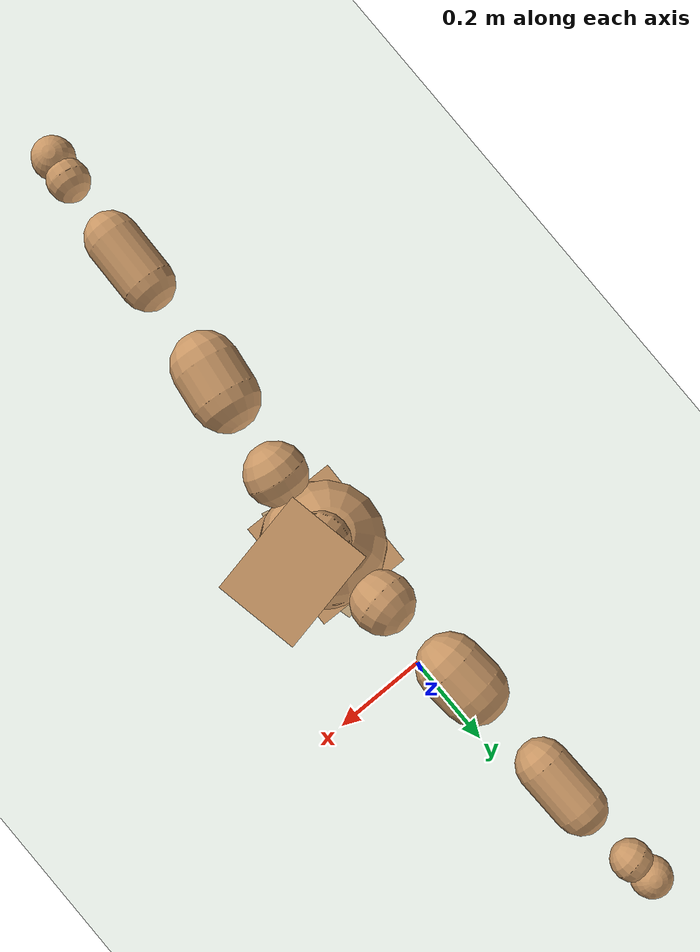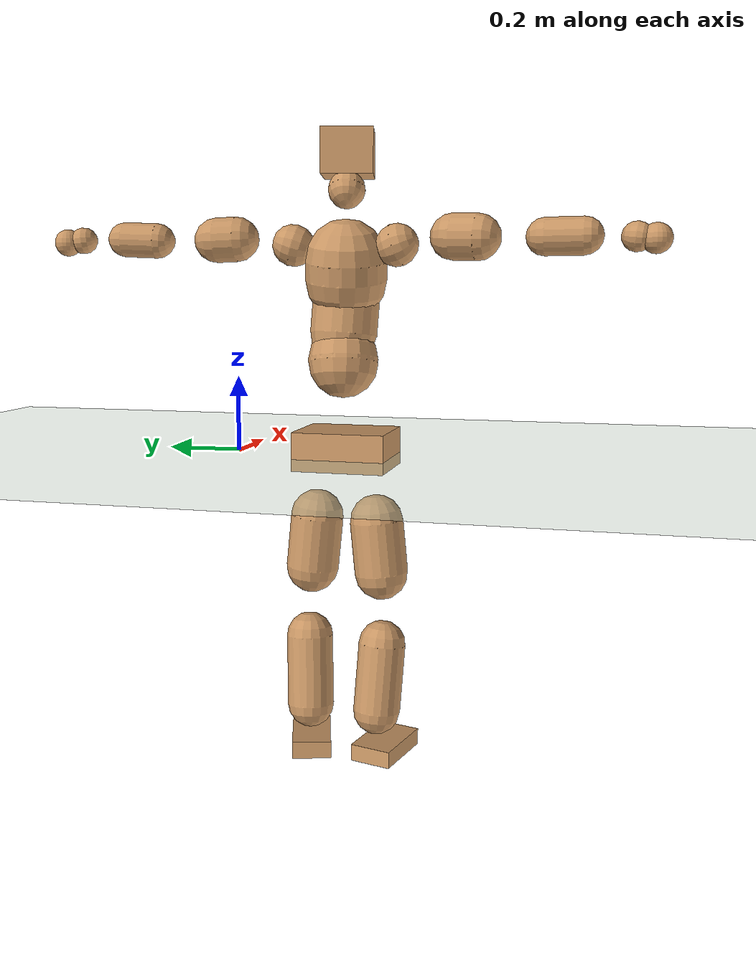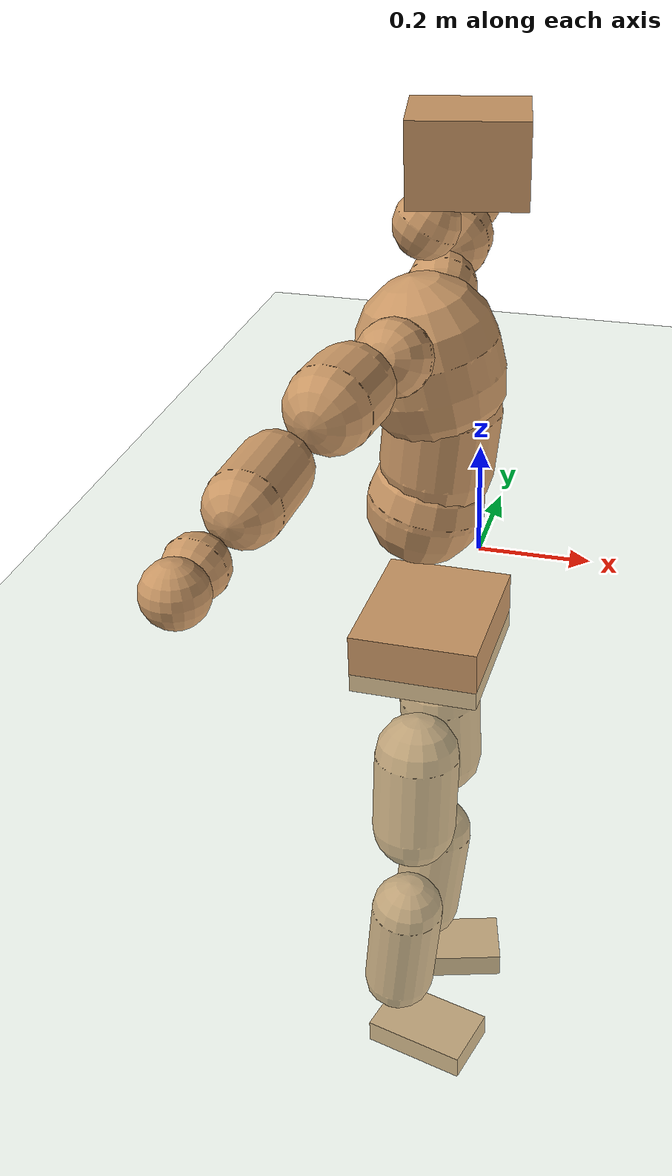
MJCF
<mujoco model="humanoid">
  <compiler coordinate="local" angle="radian"/>
  <default>
    <joint damping="0.0" armature="0.01" stiffness="0.0" limited="true"/>
    <geom conaffinity="1" condim="3" contype="7" margin="0.001" rgba="0.8 0.6 .4 1"/>
  </default>
  <asset>
    <texture type="skybox" builtin="gradient" rgb1=".4 .5 .6" rgb2="0 0 0" width="100" height="100"/>
    <texture builtin="flat" height="1278" mark="cross" markrgb="1 1 1" name="texgeom" random="0.01" rgb1="0.8 0.6 0.4" rgb2="0.8 0.6 0.4" type="cube" width="127"/>
    <texture builtin="checker" height="100" name="texplane" rgb1="0 0 0" rgb2="0.8 0.8 0.8" type="2d" width="100"/>
    <material name="MatPlane" reflectance="0.5" shininess="1" specular="1" texrepeat="60 60" texture="texplane"/>
    <material name="geom" texture="texgeom" texuniform="true"/>
  </asset>
  <worldbody>
    <light cutoff="100" diffuse="1 1 1" dir="-0 0 -1.3" directional="true" exponent="1" pos="0 0 1.3" specular=".1 .1 .1"/>
    <geom conaffinity="1" condim="3" name="floor" pos="0 0 0" rgba="0.8 0.9 0.8 1" size="100 100 .2" type="plane" material="MatPlane"/>
    <body name="Pelvis" pos="0.0004 -0.3045 0.0255">
      <freejoint name="Pelvis"/>
      <geom type="box" contype="1" conaffinity="1" density="5359.375052" pos="-0.0130 0.0002 -0.0086" size="0.1026 0.1219 0.0506" quat="1.0000 0.0000 0.0000 -0.0085" name="Pelvis"/>
      <body name="L_Hip" pos="-0.0201 0.0702 -0.0921">
        <joint name="L_Hip_x" type="hinge" pos="0 0 0" axis="1 0 0" stiffness="1600" damping="160" armature="0.02" range="-180.0000 180.0000"/>
        <joint name="L_Hip_y" type="hinge" pos="0 0 0" axis="0 1 0" stiffness="1600" damping="160" armature="0.02" range="-180.0000 180.0000"/>
        <joint name="L_Hip_z" type="hinge" pos="0 0 0" axis="0 0 1" stiffness="1600" damping="160" armature="0.02" range="-180.0000 180.0000"/>
        <geom type="capsule" contype="1" conaffinity="1" density="2040.816327" size="0.0701" fromto="0.0009 0.0098 -0.0996 0.0022 0.0236 -0.2400" name="L_Hip"/>
        <body name="L_Knee" pos="0.0031 0.0333 -0.3397">
          <joint name="L_Knee_x" type="hinge" pos="0 0 0" axis="1 0 0" stiffness="1600" damping="160" armature="0.02" range="-180.0000 180.0000"/>
          <joint name="L_Knee_y" type="hinge" pos="0 0 0" axis="0 1 0" stiffness="1600" damping="160" armature="0.02" range="-180.0000 180.0000"/>
          <joint name="L_Knee_z" type="hinge" pos="0 0 0" axis="0 0 1" stiffness="1600" damping="160" armature="0.02" range="-180.0000 180.0000"/>
          <geom type="capsule" contype="1" conaffinity="1" density="1234.567901" size="0.0622" fromto="-0.0108 -0.0041 -0.0915 -0.0326 -0.0125 -0.2770" name="L_Knee"/>
          <body name="L_Ankle" pos="-0.0434 -0.0166 -0.3685">
            <joint name="L_Ankle_x" type="hinge" pos="0 0 0" axis="1 0 0" stiffness="1600" damping="160" armature="0.02" range="-180.0000 180.0000"/>
            <joint name="L_Ankle_y" type="hinge" pos="0 0 0" axis="0 1 0" stiffness="1600" damping="160" armature="0.02" range="-180.0000 180.0000"/>
            <joint name="L_Ankle_z" type="hinge" pos="0 0 0" axis="0 0 1" stiffness="1600" damping="160" armature="0.02" range="-180.0000 180.0000"/>
            <geom type="box" contype="1" conaffinity="1" density="1000.000033" pos="0.0614 0.0171 -0.0284" size="0.0904 0.0524 0.0231" quat="0.9908 0.0000 0.0000 0.1355" name="L_Ankle"/>
            <body name="L_Toe" pos="0.1227 0.0342 -0.0568">
              <joint name="L_Toe_x" type="hinge" pos="0 0 0" axis="1 0 0" stiffness="1000" damping="100" armature="0.02" range="-180.0000 180.0000"/>
              <joint name="L_Toe_y" type="hinge" pos="0 0 0" axis="0 1 0" stiffness="1000" damping="100" armature="0.02" range="-180.0000 180.0000"/>
              <joint name="L_Toe_z" type="hinge" pos="0 0 0" axis="0 0 1" stiffness="1000" damping="100" armature="0.02" range="-180.0000 180.0000"/>
              <geom type="box" contype="1" conaffinity="1" density="8178111.970543" pos="0.0000 0.0000 0.0281" size="0.0011 0.0026 0.0011" quat="0.9900 0.0000 0.0000 0.1408" name="L_Toe"/>
            </body>
          </body>
        </body>
      </body>
      <body name="R_Hip" pos="-0.0161 -0.0723 -0.0991">
        <joint name="R_Hip_x" type="hinge" pos="0 0 0" axis="1 0 0" stiffness="1600" damping="160" armature="0.02" range="-180.0000 180.0000"/>
        <joint name="R_Hip_y" type="hinge" pos="0 0 0" axis="0 1 0" stiffness="1600" damping="160" armature="0.02" range="-180.0000 180.0000"/>
        <joint name="R_Hip_z" type="hinge" pos="0 0 0" axis="0 0 1" stiffness="1600" damping="160" armature="0.02" range="-180.0000 180.0000"/>
        <geom type="capsule" contype="1" conaffinity="1" density="2040.816327" size="0.0703" fromto="-0.0021 -0.0102 -0.0997 -0.0050 -0.0246 -0.2397" name="R_Hip"/>
        <body name="R_Knee" pos="-0.0071 -0.0349 -0.3394">
          <joint name="R_Knee_x" type="hinge" pos="0 0 0" axis="1 0 0" stiffness="1600" damping="160" armature="0.02" range="-180.0000 180.0000"/>
          <joint name="R_Knee_y" type="hinge" pos="0 0 0" axis="0 1 0" stiffness="1600" damping="160" armature="0.02" range="-180.0000 180.0000"/>
          <joint name="R_Knee_z" type="hinge" pos="0 0 0" axis="0 0 1" stiffness="1600" damping="160" armature="0.02" range="-180.0000 180.0000"/>
          <geom type="capsule" contype="1" conaffinity="1" density="1234.567901" size="0.0623" fromto="-0.0105 0.0048 -0.0916 -0.0310 0.0143 -0.2709" name="R_Knee"/>
          <body name="R_Ankle" pos="-0.0415 0.0192 -0.3625">
            <joint name="R_Ankle_x" type="hinge" pos="0 0 0" axis="1 0 0" stiffness="1600" damping="160" armature="0.02" range="-180.0000 180.0000"/>
            <joint name="R_Ankle_y" type="hinge" pos="0 0 0" axis="0 1 0" stiffness="1600" damping="160" armature="0.02" range="-180.0000 180.0000"/>
            <joint name="R_Ankle_z" type="hinge" pos="0 0 0" axis="0 0 1" stiffness="1600" damping="160" armature="0.02" range="-180.0000 180.0000"/>
            <geom type="box" contype="1" conaffinity="1" density="1000.000032" pos="0.0664 -0.0170 -0.0274" size="0.0915 0.0562 0.0223" quat="0.9922 0.0000 0.0000 -0.1249" name="R_Ankle"/>
            <body name="R_Toe" pos="0.1327 -0.034 -0.0549">
              <joint name="R_Toe_x" type="hinge" pos="0 0 0" axis="1 0 0" stiffness="1000" damping="100" armature="0.02" range="-180.0000 180.0000"/>
              <joint name="R_Toe_y" type="hinge" pos="0 0 0" axis="0 1 0" stiffness="1000" damping="100" armature="0.02" range="-180.0000 180.0000"/>
              <joint name="R_Toe_z" type="hinge" pos="0 0 0" axis="0 0 1" stiffness="1000" damping="100" armature="0.02" range="-180.0000 180.0000"/>
              <geom type="box" contype="1" conaffinity="1" density="7323656.210841" pos="0.0000 0.0000 0.0306" size="0.0011 0.0028 0.0013" quat="0.9932 0.0000 0.0000 -0.1162" name="R_Toe"/>
            </body>
          </body>
        </body>
      </body>
      <body name="Torso" pos="-0.0415 0.0034 0.1396">
        <joint name="Torso_x" type="hinge" pos="0 0 0" axis="1 0 0" stiffness="2000" damping="200" armature="0.02" range="-180.0000 180.0000"/>
        <joint name="Torso_y" type="hinge" pos="0 0 0" axis="0 1 0" stiffness="2000" damping="200" armature="0.02" range="-180.0000 180.0000"/>
        <joint name="Torso_z" type="hinge" pos="0 0 0" axis="0 0 1" stiffness="2000" damping="200" armature="0.02" range="-180.0000 180.0000"/>
        <geom type="capsule" contype="1" conaffinity="1" density="2040.816327" size="0.0912" fromto="0.0196 0.0034 0.0890 0.0173 0.0030 0.0785" name="Torso"/>
        <body name="Spine" pos="0.0369 0.0064 0.1675">
          <joint name="Spine_x" type="hinge" pos="0 0 0" axis="1 0 0" stiffness="2000" damping="200" armature="0.02" range="-180.0000 180.0000"/>
          <joint name="Spine_y" type="hinge" pos="0 0 0" axis="0 1 0" stiffness="2000" damping="200" armature="0.02" range="-180.0000 180.0000"/>
          <joint name="Spine_z" type="hinge" pos="0 0 0" axis="0 0 1" stiffness="2000" damping="200" armature="0.02" range="-180.0000 180.0000"/>
          <geom type="capsule" contype="1" conaffinity="1" density="2040.816327" size="0.0871" fromto="0.0107 -0.0042 0.0863 -0.0020 0.0008 -0.0165" name="Spine"/>
          <body name="Chest" pos="0.0086 -0.0034 0.0698">
            <joint name="Chest_x" type="hinge" pos="0 0 0" axis="1 0 0" stiffness="2000" damping="200" armature="0.02" range="-180.0000 180.0000"/>
            <joint name="Chest_y" type="hinge" pos="0 0 0" axis="0 1 0" stiffness="2000" damping="200" armature="0.02" range="-180.0000 180.0000"/>
            <joint name="Chest_z" type="hinge" pos="0 0 0" axis="0 0 1" stiffness="2000" damping="200" armature="0.02" range="-180.0000 180.0000"/>
            <geom type="capsule" contype="1" conaffinity="1" density="2040.816327" size="0.1063" fromto="-0.0222 -0.0053 0.1039 -0.0118 -0.0028 0.0554" name="Chest"/>
            <body name="Neck" pos="-0.049 -0.0116 0.2342">
              <joint name="Neck_x" type="hinge" pos="0 0 0" axis="1 0 0" stiffness="1000" damping="100" armature="0.02" range="-180.0000 180.0000"/>
              <joint name="Neck_y" type="hinge" pos="0 0 0" axis="0 1 0" stiffness="1000" damping="100" armature="0.02" range="-180.0000 180.0000"/>
              <joint name="Neck_z" type="hinge" pos="0 0 0" axis="0 0 1" stiffness="1000" damping="100" armature="0.02" range="-180.0000 180.0000"/>
              <geom type="capsule" contype="1" conaffinity="1" density="1000" size="0.0476" fromto="0.0267 0.0044 0.0469 0.0277 0.0046 0.0486" name="Neck"/>
              <body name="Head" pos="0.0543 0.009 0.0955">
                <joint name="Head_x" type="hinge" pos="0 0 0" axis="1 0 0" stiffness="1000" damping="100" armature="0.02" range="-180.0000 180.0000"/>
                <joint name="Head_y" type="hinge" pos="0 0 0" axis="0 1 0" stiffness="1000" damping="100" armature="0.02" range="-180.0000 180.0000"/>
                <joint name="Head_z" type="hinge" pos="0 0 0" axis="0 0 1" stiffness="1000" damping="100" armature="0.02" range="-180.0000 180.0000"/>
                <geom type="box" contype="1" conaffinity="1" density="2249.999892" pos="0.0282 0.0055 0.0487" size="0.0819 0.0669 0.0577" quat="0.9954 0.0000 0.0000 0.0963" name="Head"/>
              </body>
            </body>
            <body name="L_Thorax" pos="-0.0236 0.07 0.1226">
              <joint name="L_Thorax_x" type="hinge" pos="0 0 0" axis="1 0 0" stiffness="1000" damping="100" armature="0.02" range="-180.0000 180.0000"/>
              <joint name="L_Thorax_y" type="hinge" pos="0 0 0" axis="0 1 0" stiffness="1000" damping="100" armature="0.02" range="-180.0000 180.0000"/>
              <joint name="L_Thorax_z" type="hinge" pos="0 0 0" axis="0 0 1" stiffness="1000" damping="100" armature="0.02" range="-180.0000 180.0000"/>
              <geom type="capsule" contype="1" conaffinity="1" density="1000" size="0.0541" fromto="-0.0100 0.0604 0.0201 -0.0103 0.0623 0.0207" name="L_Thorax"/>
              <body name="L_Shoulder" pos="-0.0204 0.1227 0.0407">
                <joint name="L_Shoulder_x" type="hinge" pos="0 0 0" axis="1 0 0" stiffness="1000" damping="100" armature="0.02" range="-720.0000 720.0000"/>
                <joint name="L_Shoulder_y" type="hinge" pos="0 0 0" axis="0 1 0" stiffness="1000" damping="100" armature="0.02" range="-720.0000 720.0000"/>
                <joint name="L_Shoulder_z" type="hinge" pos="0 0 0" axis="0 0 1" stiffness="1000" damping="100" armature="0.02" range="-720.0000 720.0000"/>
                <geom type="capsule" contype="1" conaffinity="1" density="1000" size="0.0576" fromto="-0.0069 0.0872 -0.0036 -0.0112 0.1415 -0.0059" name="L_Shoulder"/>
                <body name="L_Elbow" pos="-0.0181 0.2287 -0.0095">
                  <joint name="L_Elbow_x" type="hinge" pos="0 0 0" axis="1 0 0" stiffness="1000" damping="100" armature="0.02" range="-720.0000 720.0000"/>
                  <joint name="L_Elbow_y" type="hinge" pos="0 0 0" axis="0 1 0" stiffness="1000" damping="100" armature="0.02" range="-720.0000 720.0000"/>
                  <joint name="L_Elbow_z" type="hinge" pos="0 0 0" axis="0 0 1" stiffness="1000" damping="100" armature="0.02" range="-720.0000 720.0000"/>
                  <geom type="capsule" contype="1" conaffinity="1" density="1000" size="0.0451" fromto="-0.0019 0.0750 0.0034 -0.0042 0.1655 0.0074" name="L_Elbow"/>
                  <body name="L_Wrist" pos="-0.0061 0.2405 0.0108">
                    <joint name="L_Wrist_x" type="hinge" pos="0 0 0" axis="1 0 0" stiffness="600" damping="60" armature="0.02" range="-180.0000 180.0000"/>
                    <joint name="L_Wrist_y" type="hinge" pos="0 0 0" axis="0 1 0" stiffness="600" damping="60" armature="0.02" range="-180.0000 180.0000"/>
                    <joint name="L_Wrist_z" type="hinge" pos="0 0 0" axis="0 0 1" stiffness="600" damping="60" armature="0.02" range="-180.0000 180.0000"/>
                    <geom type="capsule" contype="1" conaffinity="1" density="1000" size="0.0346" fromto="-0.0072 0.0415 -0.0053 -0.0076 0.0434 -0.0055" name="L_Wrist"/>
                    <body name="L_Hand" pos="-0.0148 0.0849 -0.0108">
                      <joint name="L_Hand_x" type="hinge" pos="0 0 0" axis="1 0 0" stiffness="600" damping="60" armature="0.02" range="-180.0000 180.0000"/>
                      <joint name="L_Hand_y" type="hinge" pos="0 0 0" axis="0 1 0" stiffness="600" damping="60" armature="0.02" range="-180.0000 180.0000"/>
                      <joint name="L_Hand_z" type="hinge" pos="0 0 0" axis="0 0 1" stiffness="600" damping="60" armature="0.02" range="-180.0000 180.0000"/>
                      <geom type="sphere" contype="1" conaffinity="1" density="1000" size="0.0353" pos="0.0000 0.0000 0.0000" name="L_Hand"/>
                    </body>
                  </body>
                </body>
              </body>
            </body>
            <body name="R_Thorax" pos="-0.0296 -0.0827 0.1208">
              <joint name="R_Thorax_x" type="hinge" pos="0 0 0" axis="1 0 0" stiffness="1000" damping="100" armature="0.02" range="-180.0000 180.0000"/>
              <joint name="R_Thorax_y" type="hinge" pos="0 0 0" axis="0 1 0" stiffness="1000" damping="100" armature="0.02" range="-180.0000 180.0000"/>
              <joint name="R_Thorax_z" type="hinge" pos="0 0 0" axis="0 0 1" stiffness="1000" damping="100" armature="0.02" range="-180.0000 180.0000"/>
              <geom type="capsule" contype="1" conaffinity="1" density="1000" size="0.0545" fromto="-0.0046 -0.0574 0.0205 -0.0048 -0.0593 0.0212" name="R_Thorax"/>
              <body name="R_Shoulder" pos="-0.0094 -0.1167 0.0417">
                <joint name="R_Shoulder_x" type="hinge" pos="0 0 0" axis="1 0 0" stiffness="1000" damping="100" armature="0.02" range="-720.0000 720.0000"/>
                <joint name="R_Shoulder_y" type="hinge" pos="0 0 0" axis="0 1 0" stiffness="1000" damping="100" armature="0.02" range="-720.0000 720.0000"/>
                <joint name="R_Shoulder_z" type="hinge" pos="0 0 0" axis="0 0 1" stiffness="1000" damping="100" armature="0.02" range="-720.0000 720.0000"/>
                <geom type="capsule" contype="1" conaffinity="1" density="1000" size="0.0586" fromto="-0.0120 -0.0878 -0.0025 -0.0203 -0.1489 -0.0043" name="R_Shoulder"/>
                <body name="R_Elbow" pos="-0.0323 -0.2366 -0.0068">
                  <joint name="R_Elbow_x" type="hinge" pos="0 0 0" axis="1 0 0" stiffness="1000" damping="100" armature="0.02" range="-720.0000 720.0000"/>
                  <joint name="R_Elbow_y" type="hinge" pos="0 0 0" axis="0 1 0" stiffness="1000" damping="100" armature="0.02" range="-720.0000 720.0000"/>
                  <joint name="R_Elbow_z" type="hinge" pos="0 0 0" axis="0 0 1" stiffness="1000" damping="100" armature="0.02" range="-720.0000 720.0000"/>
                  <geom type="capsule" contype="1" conaffinity="1" density="1000" size="0.0462" fromto="-0.0018 -0.0762 0.0009 -0.0040 -0.1695 0.0020" name="R_Elbow"/>
                  <body name="R_Wrist" pos="-0.0059 -0.2457 0.0029">
                    <joint name="R_Wrist_x" type="hinge" pos="0 0 0" axis="1 0 0" stiffness="600" damping="60" armature="0.02" range="-180.0000 180.0000"/>
                    <joint name="R_Wrist_y" type="hinge" pos="0 0 0" axis="0 1 0" stiffness="600" damping="60" armature="0.02" range="-180.0000 180.0000"/>
                    <joint name="R_Wrist_z" type="hinge" pos="0 0 0" axis="0 0 1" stiffness="600" damping="60" armature="0.02" range="-180.0000 180.0000"/>
                    <geom type="capsule" contype="1" conaffinity="1" density="1000" size="0.0362" fromto="-0.0046 -0.0439 -0.0043 -0.0048 -0.0459 -0.0045" name="R_Wrist"/>
                    <body name="R_Hand" pos="-0.0094 -0.0897 -0.0088">
                      <joint name="R_Hand_x" type="hinge" pos="0 0 0" axis="1 0 0" stiffness="600" damping="60" armature="0.02" range="-180.0000 180.0000"/>
                      <joint name="R_Hand_y" type="hinge" pos="0 0 0" axis="0 1 0" stiffness="600" damping="60" armature="0.02" range="-180.0000 180.0000"/>
                      <joint name="R_Hand_z" type="hinge" pos="0 0 0" axis="0 0 1" stiffness="600" damping="60" armature="0.02" range="-180.0000 180.0000"/>
                      <geom type="sphere" contype="1" conaffinity="1" density="1000" size="0.0368" pos="0.0000 0.0000 0.0000" name="R_Hand"/>
                    </body>
                  </body>
                </body>
              </body>
            </body>
          </body>
        </body>
      </body>
    </body>
  </worldbody>
  <actuator>
    <motor name="L_Hip_x" joint="L_Hip_x" gear="500"/>
    <motor name="L_Hip_y" joint="L_Hip_y" gear="500"/>
    <motor name="L_Hip_z" joint="L_Hip_z" gear="500"/>
    <motor name="L_Knee_x" joint="L_Knee_x" gear="500"/>
    <motor name="L_Knee_y" joint="L_Knee_y" gear="500"/>
    <motor name="L_Knee_z" joint="L_Knee_z" gear="500"/>
    <motor name="L_Ankle_x" joint="L_Ankle_x" gear="500"/>
    <motor name="L_Ankle_y" joint="L_Ankle_y" gear="500"/>
    <motor name="L_Ankle_z" joint="L_Ankle_z" gear="500"/>
    <motor name="L_Toe_x" joint="L_Toe_x" gear="500"/>
    <motor name="L_Toe_y" joint="L_Toe_y" gear="500"/>
    <motor name="L_Toe_z" joint="L_Toe_z" gear="500"/>
    <motor name="R_Hip_x" joint="R_Hip_x" gear="500"/>
    <motor name="R_Hip_y" joint="R_Hip_y" gear="500"/>
    <motor name="R_Hip_z" joint="R_Hip_z" gear="500"/>
    <motor name="R_Knee_x" joint="R_Knee_x" gear="500"/>
    <motor name="R_Knee_y" joint="R_Knee_y" gear="500"/>
    <motor name="R_Knee_z" joint="R_Knee_z" gear="500"/>
    <motor name="R_Ankle_x" joint="R_Ankle_x" gear="500"/>
    <motor name="R_Ankle_y" joint="R_Ankle_y" gear="500"/>
    <motor name="R_Ankle_z" joint="R_Ankle_z" gear="500"/>
    <motor name="R_Toe_x" joint="R_Toe_x" gear="500"/>
    <motor name="R_Toe_y" joint="R_Toe_y" gear="500"/>
    <motor name="R_Toe_z" joint="R_Toe_z" gear="500"/>
    <motor name="Torso_x" joint="Torso_x" gear="500"/>
    <motor name="Torso_y" joint="Torso_y" gear="500"/>
    <motor name="Torso_z" joint="Torso_z" gear="500"/>
    <motor name="Spine_x" joint="Spine_x" gear="500"/>
    <motor name="Spine_y" joint="Spine_y" gear="500"/>
    <motor name="Spine_z" joint="Spine_z" gear="500"/>
    <motor name="Chest_x" joint="Chest_x" gear="500"/>
    <motor name="Chest_y" joint="Chest_y" gear="500"/>
    <motor name="Chest_z" joint="Chest_z" gear="500"/>
    <motor name="Neck_x" joint="Neck_x" gear="500"/>
    <motor name="Neck_y" joint="Neck_y" gear="500"/>
    <motor name="Neck_z" joint="Neck_z" gear="500"/>
    <motor name="Head_x" joint="Head_x" gear="500"/>
    <motor name="Head_y" joint="Head_y" gear="500"/>
    <motor name="Head_z" joint="Head_z" gear="500"/>
    <motor name="L_Thorax_x" joint="L_Thorax_x" gear="500"/>
    <motor name="L_Thorax_y" joint="L_Thorax_y" gear="500"/>
    <motor name="L_Thorax_z" joint="L_Thorax_z" gear="500"/>
    <motor name="L_Shoulder_x" joint="L_Shoulder_x" gear="500"/>
    <motor name="L_Shoulder_y" joint="L_Shoulder_y" gear="500"/>
    <motor name="L_Shoulder_z" joint="L_Shoulder_z" gear="500"/>
    <motor name="L_Elbow_x" joint="L_Elbow_x" gear="500"/>
    <motor name="L_Elbow_y" joint="L_Elbow_y" gear="500"/>
    <motor name="L_Elbow_z" joint="L_Elbow_z" gear="500"/>
    <motor name="L_Wrist_x" joint="L_Wrist_x" gear="500"/>
    <motor name="L_Wrist_y" joint="L_Wrist_y" gear="500"/>
    <motor name="L_Wrist_z" joint="L_Wrist_z" gear="500"/>
    <motor name="L_Hand_x" joint="L_Hand_x" gear="500"/>
    <motor name="L_Hand_y" joint="L_Hand_y" gear="500"/>
    <motor name="L_Hand_z" joint="L_Hand_z" gear="500"/>
    <motor name="R_Thorax_x" joint="R_Thorax_x" gear="500"/>
    <motor name="R_Thorax_y" joint="R_Thorax_y" gear="500"/>
    <motor name="R_Thorax_z" joint="R_Thorax_z" gear="500"/>
    <motor name="R_Shoulder_x" joint="R_Shoulder_x" gear="500"/>
    <motor name="R_Shoulder_y" joint="R_Shoulder_y" gear="500"/>
    <motor name="R_Shoulder_z" joint="R_Shoulder_z" gear="500"/>
    <motor name="R_Elbow_x" joint="R_Elbow_x" gear="500"/>
    <motor name="R_Elbow_y" joint="R_Elbow_y" gear="500"/>
    <motor name="R_Elbow_z" joint="R_Elbow_z" gear="500"/>
    <motor name="R_Wrist_x" joint="R_Wrist_x" gear="500"/>
    <motor name="R_Wrist_y" joint="R_Wrist_y" gear="500"/>
    <motor name="R_Wrist_z" joint="R_Wrist_z" gear="500"/>
    <motor name="R_Hand_x" joint="R_Hand_x" gear="500"/>
    <motor name="R_Hand_y" joint="R_Hand_y" gear="500"/>
    <motor name="R_Hand_z" joint="R_Hand_z" gear="500"/>
  </actuator>
  <contact>
    <exclude body1="Torso" body2="Chest"/>
    <exclude body1="Head" body2="Chest"/>
    <exclude body1="R_Knee" body2="R_Toe"/>
    <exclude body1="R_Knee" body2="L_Ankle"/>
    <exclude body1="R_Knee" body2="L_Toe"/>
    <exclude body1="L_Knee" body2="L_Toe"/>
    <exclude body1="L_Knee" body2="R_Ankle"/>
    <exclude body1="L_Knee" body2="R_Toe"/>
    <exclude body1="L_Shoulder" body2="Chest"/>
    <exclude body1="R_Shoulder" body2="Chest"/>
  </contact>
  <sensor/>
  <size njmax="700" nconmax="700"/>
</mujoco>
